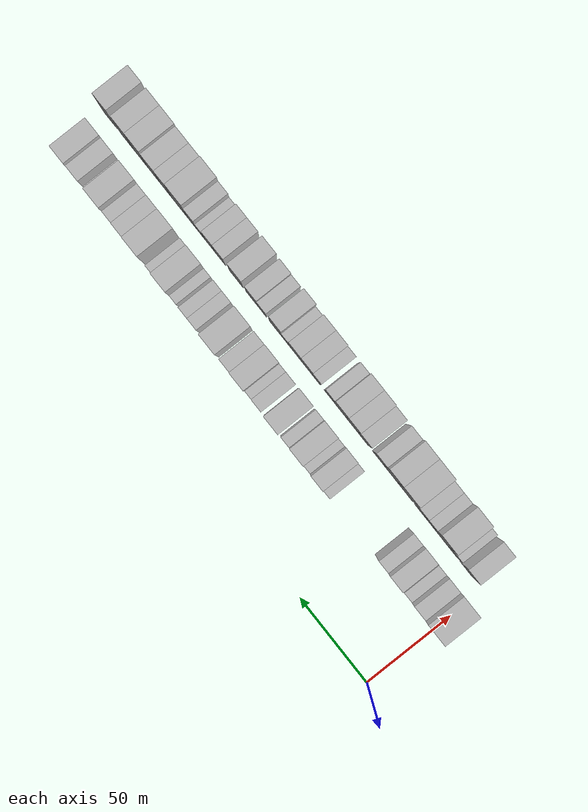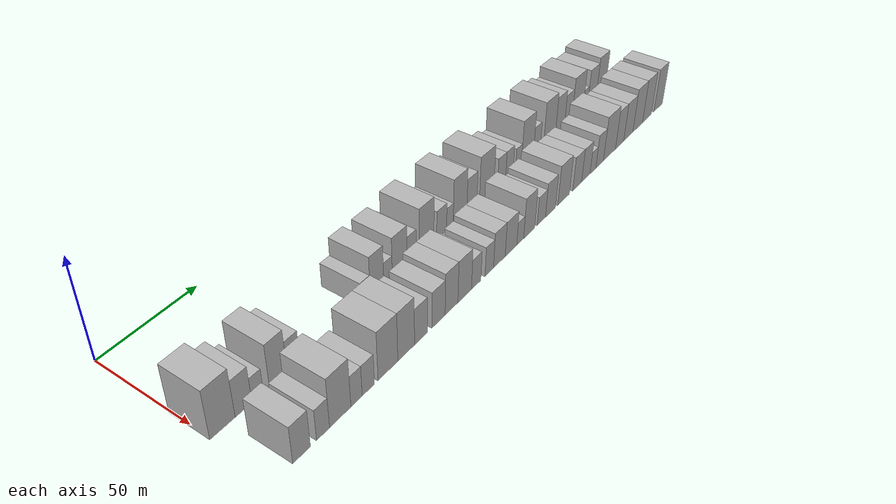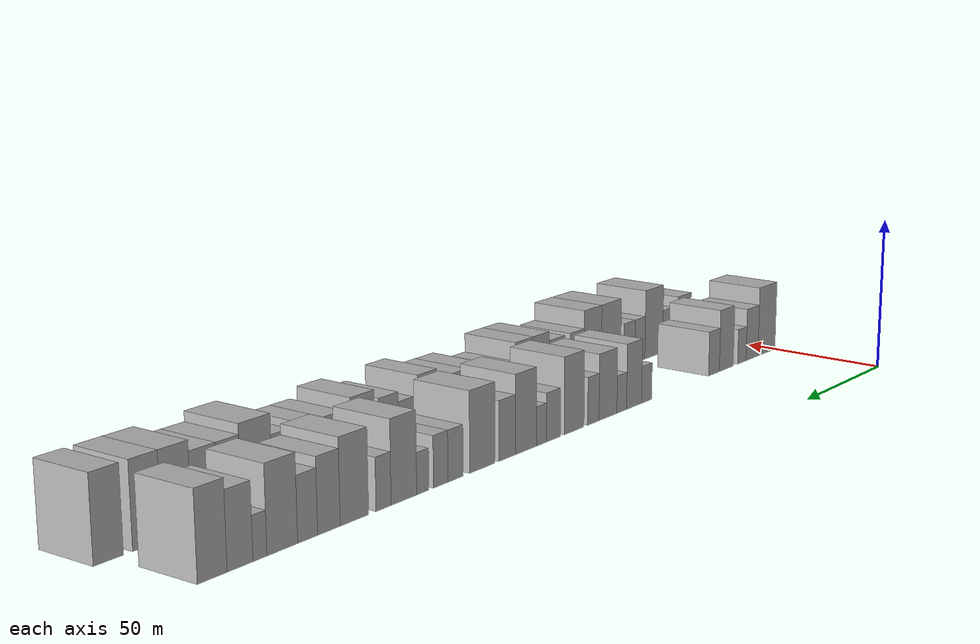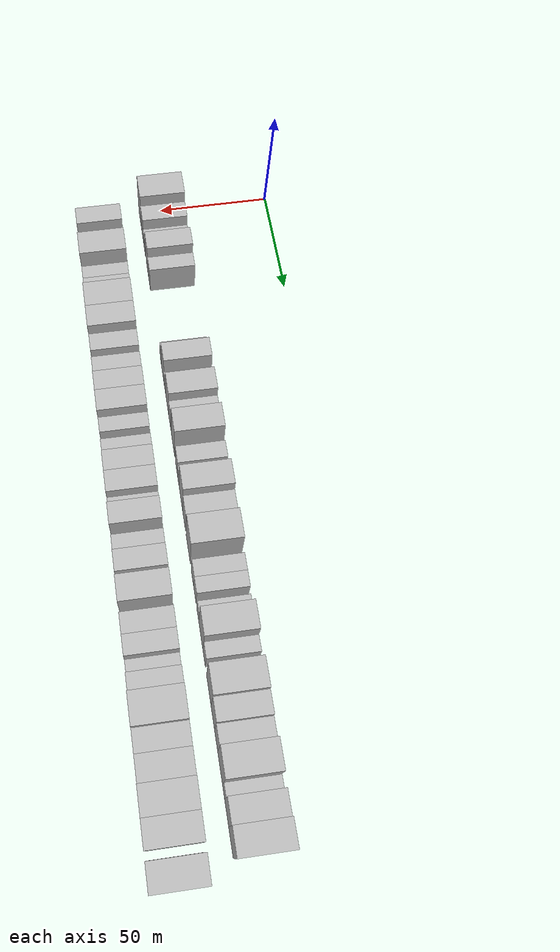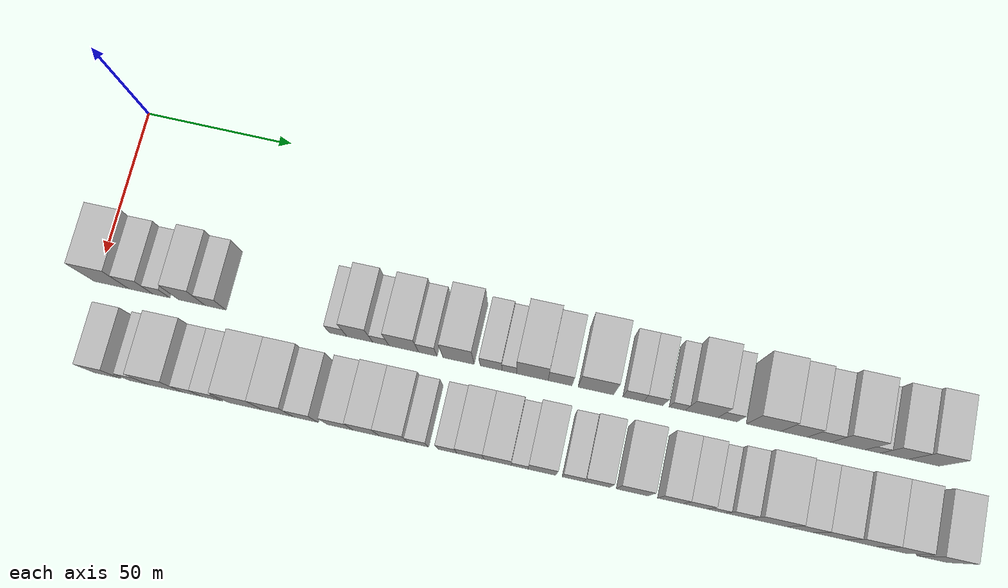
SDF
<sdf version="1.6">
 <world name="default">
  <model name="building_26">
   <static>1</static>
   <pose>50.0000 5.2599 0 0.000000 0.000000 0.000000</pose>
   <link name="link">
    <pose>0 0 12.00 0 0 0</pose>
    <collision name="collision"><geometry><box><size>20.0000 11.9224 24.0000</size></box></geometry></collision>
    <visual name="visual">
     <cast_shadows>0</cast_shadows>
     <geometry><box><size>20.0000 11.9224 24.0000</size></box></geometry>
     <material>
      <script>
       <uri>model://HANNAS_wall/materials/scripts</uri>
       <uri>model://HANNAS_wall/materials/textures</uri>
       <name>vrc/HANNAS_wall</name>
      </script>
     </material>
    </visual>
   </link>
  </model>
  <model name="building_27">
   <static>1</static>
   <pose>50.0000 15.2924 0 0.000000 0.000000 0.000000</pose>
   <link name="link">
    <pose>0 0 9.00 0 0 0</pose>
    <collision name="collision"><geometry><box><size>20.0000 8.1427 18.0000</size></box></geometry></collision>
    <visual name="visual">
     <cast_shadows>0</cast_shadows>
     <geometry><box><size>20.0000 8.1427 18.0000</size></box></geometry>
     <material>
      <script>
       <uri>model://HANNAS_wall/materials/scripts</uri>
       <uri>model://HANNAS_wall/materials/textures</uri>
       <name>vrc/HANNAS_wall</name>
      </script>
     </material>
    </visual>
   </link>
  </model>
  <model name="building_28">
   <static>1</static>
   <pose>50.0000 22.2158 0 0.000000 0.000000 0.000000</pose>
   <link name="link">
    <pose>0 0 6.00 0 0 0</pose>
    <collision name="collision"><geometry><box><size>20.0000 5.7040 12.0000</size></box></geometry></collision>
    <visual name="visual">
     <cast_shadows>0</cast_shadows>
     <geometry><box><size>20.0000 5.7040 12.0000</size></box></geometry>
     <material>
      <script>
       <uri>model://HANNAS_wall/materials/scripts</uri>
       <uri>model://HANNAS_wall/materials/textures</uri>
       <name>vrc/HANNAS_wall</name>
      </script>
     </material>
    </visual>
   </link>
  </model>
  <model name="building_29">
   <static>1</static>
   <pose>50.0000 32.6058 0 0.000000 0.000000 0.000000</pose>
   <link name="link">
    <pose>0 0 10.50 0 0 0</pose>
    <collision name="collision"><geometry><box><size>20.0000 9.0759 21.0000</size></box></geometry></collision>
    <visual name="visual">
     <cast_shadows>0</cast_shadows>
     <geometry><box><size>20.0000 9.0759 21.0000</size></box></geometry>
     <material>
      <script>
       <uri>model://HANNAS_wall/materials/scripts</uri>
       <uri>model://HANNAS_wall/materials/textures</uri>
       <name>vrc/HANNAS_wall</name>
      </script>
     </material>
    </visual>
   </link>
  </model>
  <model name="building_30">
   <static>1</static>
   <pose>50.0000 40.6264 0 0.000000 0.000000 0.000000</pose>
   <link name="link">
    <pose>0 0 7.50 0 0 0</pose>
    <collision name="collision"><geometry><box><size>20.0000 6.9654 15.0000</size></box></geometry></collision>
    <visual name="visual">
     <cast_shadows>0</cast_shadows>
     <geometry><box><size>20.0000 6.9654 15.0000</size></box></geometry>
     <material>
      <script>
       <uri>model://HANNAS_wall/materials/scripts</uri>
       <uri>model://HANNAS_wall/materials/textures</uri>
       <name>vrc/HANNAS_wall</name>
      </script>
     </material>
    </visual>
   </link>
  </model>
  <model name="building_31">
   <static>1</static>
   <pose>50.0000 81.9017 0 0.000000 0.000000 0.000000</pose>
   <link name="link">
    <pose>0 0 6.00 0 0 0</pose>
    <collision name="collision"><geometry><box><size>20.0000 5.8618 12.0000</size></box></geometry></collision>
    <visual name="visual">
     <cast_shadows>0</cast_shadows>
     <geometry><box><size>20.0000 5.8618 12.0000</size></box></geometry>
     <material>
      <script>
       <uri>model://HANNAS_wall/materials/scripts</uri>
       <uri>model://HANNAS_wall/materials/textures</uri>
       <name>vrc/HANNAS_wall</name>
      </script>
     </material>
    </visual>
   </link>
  </model>
  <model name="building_32">
   <static>1</static>
   <pose>50.0000 89.1438 0 0.000000 0.000000 0.000000</pose>
   <link name="link">
    <pose>0 0 10.50 0 0 0</pose>
    <collision name="collision"><geometry><box><size>20.0000 8.6224 21.0000</size></box></geometry></collision>
    <visual name="visual">
     <cast_shadows>0</cast_shadows>
     <geometry><box><size>20.0000 8.6224 21.0000</size></box></geometry>
     <material>
      <script>
       <uri>model://HANNAS_wall/materials/scripts</uri>
       <uri>model://HANNAS_wall/materials/textures</uri>
       <name>vrc/HANNAS_wall</name>
      </script>
     </material>
    </visual>
   </link>
  </model>
  <model name="building_33">
   <static>1</static>
   <pose>50.0000 96.1727 0 0.000000 0.000000 0.000000</pose>
   <link name="link">
    <pose>0 0 6.00 0 0 0</pose>
    <collision name="collision"><geometry><box><size>20.0000 5.4354 12.0000</size></box></geometry></collision>
    <visual name="visual">
     <cast_shadows>0</cast_shadows>
     <geometry><box><size>20.0000 5.4354 12.0000</size></box></geometry>
     <material>
      <script>
       <uri>model://HANNAS_wall/materials/scripts</uri>
       <uri>model://HANNAS_wall/materials/textures</uri>
       <name>vrc/HANNAS_wall</name>
      </script>
     </material>
    </visual>
   </link>
  </model>
  <model name="building_34">
   <static>1</static>
   <pose>50.0000 103.8210 0 0.000000 0.000000 0.000000</pose>
   <link name="link">
    <pose>0 0 10.50 0 0 0</pose>
    <collision name="collision"><geometry><box><size>20.0000 9.8612 21.0000</size></box></geometry></collision>
    <visual name="visual">
     <cast_shadows>0</cast_shadows>
     <geometry><box><size>20.0000 9.8612 21.0000</size></box></geometry>
     <material>
      <script>
       <uri>model://HANNAS_wall/materials/scripts</uri>
       <uri>model://HANNAS_wall/materials/textures</uri>
       <name>vrc/HANNAS_wall</name>
      </script>
     </material>
    </visual>
   </link>
  </model>
  <model name="building_35">
   <static>1</static>
   <pose>50.0000 111.8027 0 0.000000 0.000000 0.000000</pose>
   <link name="link">
    <pose>0 0 7.50 0 0 0</pose>
    <collision name="collision"><geometry><box><size>20.0000 6.1020 15.0000</size></box></geometry></collision>
    <visual name="visual">
     <cast_shadows>0</cast_shadows>
     <geometry><box><size>20.0000 6.1020 15.0000</size></box></geometry>
     <material>
      <script>
       <uri>model://HANNAS_wall/materials/scripts</uri>
       <uri>model://HANNAS_wall/materials/textures</uri>
       <name>vrc/HANNAS_wall</name>
      </script>
     </material>
    </visual>
   </link>
  </model>
  <model name="building_36">
   <static>1</static>
   <pose>50.0000 121.9957 0 0.000000 0.000000 0.000000</pose>
   <link name="link">
    <pose>0 0 12.00 0 0 0</pose>
    <collision name="collision"><geometry><box><size>20.0000 10.2840 24.0000</size></box></geometry></collision>
    <visual name="visual">
     <cast_shadows>0</cast_shadows>
     <geometry><box><size>20.0000 10.2840 24.0000</size></box></geometry>
     <material>
      <script>
       <uri>model://HANNAS_wall/materials/scripts</uri>
       <uri>model://HANNAS_wall/materials/textures</uri>
       <name>vrc/HANNAS_wall</name>
      </script>
     </material>
    </visual>
   </link>
  </model>
  <model name="building_37">
   <static>1</static>
   <pose>50.0000 132.7473 0 0.000000 0.000000 0.000000</pose>
   <link name="link">
    <pose>0 0 7.50 0 0 0</pose>
    <collision name="collision"><geometry><box><size>20.0000 7.2192 15.0000</size></box></geometry></collision>
    <visual name="visual">
     <cast_shadows>0</cast_shadows>
     <geometry><box><size>20.0000 7.2192 15.0000</size></box></geometry>
     <material>
      <script>
       <uri>model://HANNAS_wall/materials/scripts</uri>
       <uri>model://HANNAS_wall/materials/textures</uri>
       <name>vrc/HANNAS_wall</name>
      </script>
     </material>
    </visual>
   </link>
  </model>
  <model name="building_38">
   <static>1</static>
   <pose>50.0000 138.8024 0 0.000000 0.000000 0.000000</pose>
   <link name="link">
    <pose>0 0 6.00 0 0 0</pose>
    <collision name="collision"><geometry><box><size>20.0000 4.8910 12.0000</size></box></geometry></collision>
    <visual name="visual">
     <cast_shadows>0</cast_shadows>
     <geometry><box><size>20.0000 4.8910 12.0000</size></box></geometry>
     <material>
      <script>
       <uri>model://HANNAS_wall/materials/scripts</uri>
       <uri>model://HANNAS_wall/materials/textures</uri>
       <name>vrc/HANNAS_wall</name>
      </script>
     </material>
    </visual>
   </link>
  </model>
  <model name="building_39">
   <static>1</static>
   <pose>50.0000 146.3720 0 0.000000 0.000000 0.000000</pose>
   <link name="link">
    <pose>0 0 12.00 0 0 0</pose>
    <collision name="collision"><geometry><box><size>20.0000 10.2482 24.0000</size></box></geometry></collision>
    <visual name="visual">
     <cast_shadows>0</cast_shadows>
     <geometry><box><size>20.0000 10.2482 24.0000</size></box></geometry>
     <material>
      <script>
       <uri>model://HANNAS_wall/materials/scripts</uri>
       <uri>model://HANNAS_wall/materials/textures</uri>
       <name>vrc/HANNAS_wall</name>
      </script>
     </material>
    </visual>
   </link>
  </model>
  <model name="building_40">
   <static>1</static>
   <pose>50.0000 155.4351 0 0.000000 0.000000 0.000000</pose>
   <link name="link">
    <pose>0 0 9.00 0 0 0</pose>
    <collision name="collision"><geometry><box><size>20.0000 7.8780 18.0000</size></box></geometry></collision>
    <visual name="visual">
     <cast_shadows>0</cast_shadows>
     <geometry><box><size>20.0000 7.8780 18.0000</size></box></geometry>
     <material>
      <script>
       <uri>model://HANNAS_wall/materials/scripts</uri>
       <uri>model://HANNAS_wall/materials/textures</uri>
       <name>vrc/HANNAS_wall</name>
      </script>
     </material>
    </visual>
   </link>
  </model>
  <model name="building_41">
   <static>1</static>
   <pose>50.0000 167.1818 0 0.000000 0.000000 0.000000</pose>
   <link name="link">
    <pose>0 0 12.00 0 0 0</pose>
    <collision name="collision"><geometry><box><size>20.0000 11.6153 24.0000</size></box></geometry></collision>
    <visual name="visual">
     <cast_shadows>0</cast_shadows>
     <geometry><box><size>20.0000 11.6153 24.0000</size></box></geometry>
     <material>
      <script>
       <uri>model://HANNAS_wall/materials/scripts</uri>
       <uri>model://HANNAS_wall/materials/textures</uri>
       <name>vrc/HANNAS_wall</name>
      </script>
     </material>
    </visual>
   </link>
  </model>
  <model name="building_42">
   <static>1</static>
   <pose>50.0000 179.3748 0 0.000000 0.000000 0.000000</pose>
   <link name="link">
    <pose>0 0 7.50 0 0 0</pose>
    <collision name="collision"><geometry><box><size>20.0000 6.7708 15.0000</size></box></geometry></collision>
    <visual name="visual">
     <cast_shadows>0</cast_shadows>
     <geometry><box><size>20.0000 6.7708 15.0000</size></box></geometry>
     <material>
      <script>
       <uri>model://HANNAS_wall/materials/scripts</uri>
       <uri>model://HANNAS_wall/materials/textures</uri>
       <name>vrc/HANNAS_wall</name>
      </script>
     </material>
    </visual>
   </link>
  </model>
  <model name="building_43">
   <static>1</static>
   <pose>50.0000 185.9460 0 0.000000 0.000000 0.000000</pose>
   <link name="link">
    <pose>0 0 7.50 0 0 0</pose>
    <collision name="collision"><geometry><box><size>20.0000 6.3716 15.0000</size></box></geometry></collision>
    <visual name="visual">
     <cast_shadows>0</cast_shadows>
     <geometry><box><size>20.0000 6.3716 15.0000</size></box></geometry>
     <material>
      <script>
       <uri>model://HANNAS_wall/materials/scripts</uri>
       <uri>model://HANNAS_wall/materials/textures</uri>
       <name>vrc/HANNAS_wall</name>
      </script>
     </material>
    </visual>
   </link>
  </model>
  <model name="building_44">
   <static>1</static>
   <pose>50.0000 193.7128 0 0.000000 0.000000 0.000000</pose>
   <link name="link">
    <pose>0 0 6.00 0 0 0</pose>
    <collision name="collision"><geometry><box><size>20.0000 5.1620 12.0000</size></box></geometry></collision>
    <visual name="visual">
     <cast_shadows>0</cast_shadows>
     <geometry><box><size>20.0000 5.1620 12.0000</size></box></geometry>
     <material>
      <script>
       <uri>model://HANNAS_wall/materials/scripts</uri>
       <uri>model://HANNAS_wall/materials/textures</uri>
       <name>vrc/HANNAS_wall</name>
      </script>
     </material>
    </visual>
   </link>
  </model>
  <model name="building_45">
   <static>1</static>
   <pose>50.0000 201.6551 0 0.000000 0.000000 0.000000</pose>
   <link name="link">
    <pose>0 0 12.00 0 0 0</pose>
    <collision name="collision"><geometry><box><size>20.0000 10.7227 24.0000</size></box></geometry></collision>
    <visual name="visual">
     <cast_shadows>0</cast_shadows>
     <geometry><box><size>20.0000 10.7227 24.0000</size></box></geometry>
     <material>
      <script>
       <uri>model://HANNAS_wall/materials/scripts</uri>
       <uri>model://HANNAS_wall/materials/textures</uri>
       <name>vrc/HANNAS_wall</name>
      </script>
     </material>
    </visual>
   </link>
  </model>
  <model name="building_46">
   <static>1</static>
   <pose>50.0000 210.0943 0 0.000000 0.000000 0.000000</pose>
   <link name="link">
    <pose>0 0 7.50 0 0 0</pose>
    <collision name="collision"><geometry><box><size>20.0000 6.1555 15.0000</size></box></geometry></collision>
    <visual name="visual">
     <cast_shadows>0</cast_shadows>
     <geometry><box><size>20.0000 6.1555 15.0000</size></box></geometry>
     <material>
      <script>
       <uri>model://HANNAS_wall/materials/scripts</uri>
       <uri>model://HANNAS_wall/materials/textures</uri>
       <name>vrc/HANNAS_wall</name>
      </script>
     </material>
    </visual>
   </link>
  </model>
  <model name="building_47">
   <static>1</static>
   <pose>50.0000 221.7397 0 0.000000 0.000000 0.000000</pose>
   <link name="link">
    <pose>0 0 12.00 0 0 0</pose>
    <collision name="collision"><geometry><box><size>20.0000 11.1353 24.0000</size></box></geometry></collision>
    <visual name="visual">
     <cast_shadows>0</cast_shadows>
     <geometry><box><size>20.0000 11.1353 24.0000</size></box></geometry>
     <material>
      <script>
       <uri>model://HANNAS_wall/materials/scripts</uri>
       <uri>model://HANNAS_wall/materials/textures</uri>
       <name>vrc/HANNAS_wall</name>
      </script>
     </material>
    </visual>
   </link>
  </model>
  <model name="building_48">
   <static>1</static>
   <pose>50.0000 231.6060 0 0.000000 0.000000 0.000000</pose>
   <link name="link">
    <pose>0 0 10.50 0 0 0</pose>
    <collision name="collision"><geometry><box><size>20.0000 8.5974 21.0000</size></box></geometry></collision>
    <visual name="visual">
     <cast_shadows>0</cast_shadows>
     <geometry><box><size>20.0000 8.5974 21.0000</size></box></geometry>
     <material>
      <script>
       <uri>model://HANNAS_wall/materials/scripts</uri>
       <uri>model://HANNAS_wall/materials/textures</uri>
       <name>vrc/HANNAS_wall</name>
      </script>
     </material>
    </visual>
   </link>
  </model>
  <model name="building_49">
   <static>1</static>
   <pose>50.0000 239.6233 0 0.000000 0.000000 0.000000</pose>
   <link name="link">
    <pose>0 0 9.00 0 0 0</pose>
    <collision name="collision"><geometry><box><size>20.0000 7.4371 18.0000</size></box></geometry></collision>
    <visual name="visual">
     <cast_shadows>0</cast_shadows>
     <geometry><box><size>20.0000 7.4371 18.0000</size></box></geometry>
     <material>
      <script>
       <uri>model://HANNAS_wall/materials/scripts</uri>
       <uri>model://HANNAS_wall/materials/textures</uri>
       <name>vrc/HANNAS_wall</name>
      </script>
     </material>
    </visual>
   </link>
  </model>
  <model name="building_50">
   <static>1</static>
   <pose>50.0000 248.8882 0 0.000000 0.000000 0.000000</pose>
   <link name="link">
    <pose>0 0 12.00 0 0 0</pose>
    <collision name="collision"><geometry><box><size>20.0000 11.0928 24.0000</size></box></geometry></collision>
    <visual name="visual">
     <cast_shadows>0</cast_shadows>
     <geometry><box><size>20.0000 11.0928 24.0000</size></box></geometry>
     <material>
      <script>
       <uri>model://HANNAS_wall/materials/scripts</uri>
       <uri>model://HANNAS_wall/materials/textures</uri>
       <name>vrc/HANNAS_wall</name>
      </script>
     </material>
    </visual>
   </link>
  </model>
  <model name="building_51">
   <static>1</static>
   <pose>50.0000 256.8732 0 0.000000 0.000000 0.000000</pose>
   <link name="link">
    <pose>0 0 6.00 0 0 0</pose>
    <collision name="collision"><geometry><box><size>20.0000 4.8772 12.0000</size></box></geometry></collision>
    <visual name="visual">
     <cast_shadows>0</cast_shadows>
     <geometry><box><size>20.0000 4.8772 12.0000</size></box></geometry>
     <material>
      <script>
       <uri>model://HANNAS_wall/materials/scripts</uri>
       <uri>model://HANNAS_wall/materials/textures</uri>
       <name>vrc/HANNAS_wall</name>
      </script>
     </material>
    </visual>
   </link>
  </model>
  <model name="building_52">
   <static>1</static>
   <pose>50.0000 263.7538 0 0.000000 0.000000 0.000000</pose>
   <link name="link">
    <pose>0 0 10.50 0 0 0</pose>
    <collision name="collision"><geometry><box><size>20.0000 8.8839 21.0000</size></box></geometry></collision>
    <visual name="visual">
     <cast_shadows>0</cast_shadows>
     <geometry><box><size>20.0000 8.8839 21.0000</size></box></geometry>
     <material>
      <script>
       <uri>model://HANNAS_wall/materials/scripts</uri>
       <uri>model://HANNAS_wall/materials/textures</uri>
       <name>vrc/HANNAS_wall</name>
      </script>
     </material>
    </visual>
   </link>
  </model>
  <model name="building_53">
   <static>1</static>
   <pose>50.0000 273.1665 0 0.000000 0.000000 0.000000</pose>
   <link name="link">
    <pose>0 0 12.00 0 0 0</pose>
    <collision name="collision"><geometry><box><size>20.0000 9.9415 24.0000</size></box></geometry></collision>
    <visual name="visual">
     <cast_shadows>0</cast_shadows>
     <geometry><box><size>20.0000 9.9415 24.0000</size></box></geometry>
     <material>
      <script>
       <uri>model://HANNAS_wall/materials/scripts</uri>
       <uri>model://HANNAS_wall/materials/textures</uri>
       <name>vrc/HANNAS_wall</name>
      </script>
     </material>
    </visual>
   </link>
  </model>
  <model name="building_86">
   <static>1</static>
   <pose>79.0000 12.7780 0 0.000000 0.000000 0.000000</pose>
   <link name="link">
    <pose>0 0 9.00 0 0 0</pose>
    <collision name="collision"><geometry><box><size>20.0000 8.6997 18.0000</size></box></geometry></collision>
    <visual name="visual">
     <cast_shadows>0</cast_shadows>
     <geometry><box><size>20.0000 8.6997 18.0000</size></box></geometry>
     <material>
      <script>
       <uri>model://HANNAS_wall/materials/scripts</uri>
       <uri>model://HANNAS_wall/materials/textures</uri>
       <name>vrc/HANNAS_wall</name>
      </script>
     </material>
    </visual>
   </link>
  </model>
  <model name="building_87">
   <static>1</static>
   <pose>79.0000 23.4597 0 0.000000 0.000000 0.000000</pose>
   <link name="link">
    <pose>0 0 7.50 0 0 0</pose>
    <collision name="collision"><geometry><box><size>20.0000 6.6637 15.0000</size></box></geometry></collision>
    <visual name="visual">
     <cast_shadows>0</cast_shadows>
     <geometry><box><size>20.0000 6.6637 15.0000</size></box></geometry>
     <material>
      <script>
       <uri>model://HANNAS_wall/materials/scripts</uri>
       <uri>model://HANNAS_wall/materials/textures</uri>
       <name>vrc/HANNAS_wall</name>
      </script>
     </material>
    </visual>
   </link>
  </model>
  <model name="building_88">
   <static>1</static>
   <pose>79.0000 32.4329 0 0.000000 0.000000 0.000000</pose>
   <link name="link">
    <pose>0 0 12.00 0 0 0</pose>
    <collision name="collision"><geometry><box><size>20.0000 11.2827 24.0000</size></box></geometry></collision>
    <visual name="visual">
     <cast_shadows>0</cast_shadows>
     <geometry><box><size>20.0000 11.2827 24.0000</size></box></geometry>
     <material>
      <script>
       <uri>model://HANNAS_wall/materials/scripts</uri>
       <uri>model://HANNAS_wall/materials/textures</uri>
       <name>vrc/HANNAS_wall</name>
      </script>
     </material>
    </visual>
   </link>
  </model>
  <model name="building_89">
   <static>1</static>
   <pose>79.0000 41.1696 0 0.000000 0.000000 0.000000</pose>
   <link name="link">
    <pose>0 0 7.50 0 0 0</pose>
    <collision name="collision"><geometry><box><size>20.0000 6.1907 15.0000</size></box></geometry></collision>
    <visual name="visual">
     <cast_shadows>0</cast_shadows>
     <geometry><box><size>20.0000 6.1907 15.0000</size></box></geometry>
     <material>
      <script>
       <uri>model://HANNAS_wall/materials/scripts</uri>
       <uri>model://HANNAS_wall/materials/textures</uri>
       <name>vrc/HANNAS_wall</name>
      </script>
     </material>
    </visual>
   </link>
  </model>
  <model name="building_90">
   <static>1</static>
   <pose>79.0000 47.6889 0 0.000000 0.000000 0.000000</pose>
   <link name="link">
    <pose>0 0 7.50 0 0 0</pose>
    <collision name="collision"><geometry><box><size>20.0000 6.8479 15.0000</size></box></geometry></collision>
    <visual name="visual">
     <cast_shadows>0</cast_shadows>
     <geometry><box><size>20.0000 6.8479 15.0000</size></box></geometry>
     <material>
      <script>
       <uri>model://HANNAS_wall/materials/scripts</uri>
       <uri>model://HANNAS_wall/materials/textures</uri>
       <name>vrc/HANNAS_wall</name>
      </script>
     </material>
    </visual>
   </link>
  </model>
  <model name="building_91">
   <static>1</static>
   <pose>79.0000 58.8904 0 0.000000 0.000000 0.000000</pose>
   <link name="link">
    <pose>0 0 12.00 0 0 0</pose>
    <collision name="collision"><geometry><box><size>20.0000 11.5549 24.0000</size></box></geometry></collision>
    <visual name="visual">
     <cast_shadows>0</cast_shadows>
     <geometry><box><size>20.0000 11.5549 24.0000</size></box></geometry>
     <material>
      <script>
       <uri>model://HANNAS_wall/materials/scripts</uri>
       <uri>model://HANNAS_wall/materials/textures</uri>
       <name>vrc/HANNAS_wall</name>
      </script>
     </material>
    </visual>
   </link>
  </model>
  <model name="building_92">
   <static>1</static>
   <pose>79.0000 69.7331 0 0.000000 0.000000 0.000000</pose>
   <link name="link">
    <pose>0 0 12.00 0 0 0</pose>
    <collision name="collision"><geometry><box><size>20.0000 10.1305 24.0000</size></box></geometry></collision>
    <visual name="visual">
     <cast_shadows>0</cast_shadows>
     <geometry><box><size>20.0000 10.1305 24.0000</size></box></geometry>
     <material>
      <script>
       <uri>model://HANNAS_wall/materials/scripts</uri>
       <uri>model://HANNAS_wall/materials/textures</uri>
       <name>vrc/HANNAS_wall</name>
      </script>
     </material>
    </visual>
   </link>
  </model>
  <model name="building_93">
   <static>1</static>
   <pose>79.0000 78.8061 0 0.000000 0.000000 0.000000</pose>
   <link name="link">
    <pose>0 0 9.00 0 0 0</pose>
    <collision name="collision"><geometry><box><size>20.0000 8.0155 18.0000</size></box></geometry></collision>
    <visual name="visual">
     <cast_shadows>0</cast_shadows>
     <geometry><box><size>20.0000 8.0155 18.0000</size></box></geometry>
     <material>
      <script>
       <uri>model://HANNAS_wall/materials/scripts</uri>
       <uri>model://HANNAS_wall/materials/textures</uri>
       <name>vrc/HANNAS_wall</name>
      </script>
     </material>
    </visual>
   </link>
  </model>
  <model name="building_94">
   <static>1</static>
   <pose>79.0000 90.0662 0 0.000000 0.000000 0.000000</pose>
   <link name="link">
    <pose>0 0 9.00 0 0 0</pose>
    <collision name="collision"><geometry><box><size>20.0000 8.5048 18.0000</size></box></geometry></collision>
    <visual name="visual">
     <cast_shadows>0</cast_shadows>
     <geometry><box><size>20.0000 8.5048 18.0000</size></box></geometry>
     <material>
      <script>
       <uri>model://HANNAS_wall/materials/scripts</uri>
       <uri>model://HANNAS_wall/materials/textures</uri>
       <name>vrc/HANNAS_wall</name>
      </script>
     </material>
    </visual>
   </link>
  </model>
  <model name="building_95">
   <static>1</static>
   <pose>79.0000 98.6277 0 0.000000 0.000000 0.000000</pose>
   <link name="link">
    <pose>0 0 10.50 0 0 0</pose>
    <collision name="collision"><geometry><box><size>20.0000 8.6181 21.0000</size></box></geometry></collision>
    <visual name="visual">
     <cast_shadows>0</cast_shadows>
     <geometry><box><size>20.0000 8.6181 21.0000</size></box></geometry>
     <material>
      <script>
       <uri>model://HANNAS_wall/materials/scripts</uri>
       <uri>model://HANNAS_wall/materials/textures</uri>
       <name>vrc/HANNAS_wall</name>
      </script>
     </material>
    </visual>
   </link>
  </model>
  <model name="building_96">
   <static>1</static>
   <pose>79.0000 107.6361 0 0.000000 0.000000 0.000000</pose>
   <link name="link">
    <pose>0 0 10.50 0 0 0</pose>
    <collision name="collision"><geometry><box><size>20.0000 9.3988 21.0000</size></box></geometry></collision>
    <visual name="visual">
     <cast_shadows>0</cast_shadows>
     <geometry><box><size>20.0000 9.3988 21.0000</size></box></geometry>
     <material>
      <script>
       <uri>model://HANNAS_wall/materials/scripts</uri>
       <uri>model://HANNAS_wall/materials/textures</uri>
       <name>vrc/HANNAS_wall</name>
      </script>
     </material>
    </visual>
   </link>
  </model>
  <model name="building_97">
   <static>1</static>
   <pose>79.0000 115.6585 0 0.000000 0.000000 0.000000</pose>
   <link name="link">
    <pose>0 0 7.50 0 0 0</pose>
    <collision name="collision"><geometry><box><size>20.0000 6.6461 15.0000</size></box></geometry></collision>
    <visual name="visual">
     <cast_shadows>0</cast_shadows>
     <geometry><box><size>20.0000 6.6461 15.0000</size></box></geometry>
     <material>
      <script>
       <uri>model://HANNAS_wall/materials/scripts</uri>
       <uri>model://HANNAS_wall/materials/textures</uri>
       <name>vrc/HANNAS_wall</name>
      </script>
     </material>
    </visual>
   </link>
  </model>
  <model name="building_98">
   <static>1</static>
   <pose>79.0000 125.1014 0 0.000000 0.000000 0.000000</pose>
   <link name="link">
    <pose>0 0 7.50 0 0 0</pose>
    <collision name="collision"><geometry><box><size>20.0000 6.2397 15.0000</size></box></geometry></collision>
    <visual name="visual">
     <cast_shadows>0</cast_shadows>
     <geometry><box><size>20.0000 6.2397 15.0000</size></box></geometry>
     <material>
      <script>
       <uri>model://HANNAS_wall/materials/scripts</uri>
       <uri>model://HANNAS_wall/materials/textures</uri>
       <name>vrc/HANNAS_wall</name>
      </script>
     </material>
    </visual>
   </link>
  </model>
  <model name="building_99">
   <static>1</static>
   <pose>79.0000 132.5782 0 0.000000 0.000000 0.000000</pose>
   <link name="link">
    <pose>0 0 9.00 0 0 0</pose>
    <collision name="collision"><geometry><box><size>20.0000 8.7138 18.0000</size></box></geometry></collision>
    <visual name="visual">
     <cast_shadows>0</cast_shadows>
     <geometry><box><size>20.0000 8.7138 18.0000</size></box></geometry>
     <material>
      <script>
       <uri>model://HANNAS_wall/materials/scripts</uri>
       <uri>model://HANNAS_wall/materials/textures</uri>
       <name>vrc/HANNAS_wall</name>
      </script>
     </material>
    </visual>
   </link>
  </model>
  <model name="building_100">
   <static>1</static>
   <pose>79.0000 141.4201 0 0.000000 0.000000 0.000000</pose>
   <link name="link">
    <pose>0 0 9.00 0 0 0</pose>
    <collision name="collision"><geometry><box><size>20.0000 8.9702 18.0000</size></box></geometry></collision>
    <visual name="visual">
     <cast_shadows>0</cast_shadows>
     <geometry><box><size>20.0000 8.9702 18.0000</size></box></geometry>
     <material>
      <script>
       <uri>model://HANNAS_wall/materials/scripts</uri>
       <uri>model://HANNAS_wall/materials/textures</uri>
       <name>vrc/HANNAS_wall</name>
      </script>
     </material>
    </visual>
   </link>
  </model>
  <model name="building_101">
   <static>1</static>
   <pose>79.0000 148.5894 0 0.000000 0.000000 0.000000</pose>
   <link name="link">
    <pose>0 0 6.00 0 0 0</pose>
    <collision name="collision"><geometry><box><size>20.0000 5.3684 12.0000</size></box></geometry></collision>
    <visual name="visual">
     <cast_shadows>0</cast_shadows>
     <geometry><box><size>20.0000 5.3684 12.0000</size></box></geometry>
     <material>
      <script>
       <uri>model://HANNAS_wall/materials/scripts</uri>
       <uri>model://HANNAS_wall/materials/textures</uri>
       <name>vrc/HANNAS_wall</name>
      </script>
     </material>
    </visual>
   </link>
  </model>
  <model name="building_102">
   <static>1</static>
   <pose>79.0000 155.7631 0 0.000000 0.000000 0.000000</pose>
   <link name="link">
    <pose>0 0 10.50 0 0 0</pose>
    <collision name="collision"><geometry><box><size>20.0000 8.9789 21.0000</size></box></geometry></collision>
    <visual name="visual">
     <cast_shadows>0</cast_shadows>
     <geometry><box><size>20.0000 8.9789 21.0000</size></box></geometry>
     <material>
      <script>
       <uri>model://HANNAS_wall/materials/scripts</uri>
       <uri>model://HANNAS_wall/materials/textures</uri>
       <name>vrc/HANNAS_wall</name>
      </script>
     </material>
    </visual>
   </link>
  </model>
  <model name="building_103">
   <static>1</static>
   <pose>79.0000 165.6798 0 0.000000 0.000000 0.000000</pose>
   <link name="link">
    <pose>0 0 7.50 0 0 0</pose>
    <collision name="collision"><geometry><box><size>20.0000 6.8545 15.0000</size></box></geometry></collision>
    <visual name="visual">
     <cast_shadows>0</cast_shadows>
     <geometry><box><size>20.0000 6.8545 15.0000</size></box></geometry>
     <material>
      <script>
       <uri>model://HANNAS_wall/materials/scripts</uri>
       <uri>model://HANNAS_wall/materials/textures</uri>
       <name>vrc/HANNAS_wall</name>
      </script>
     </material>
    </visual>
   </link>
  </model>
  <model name="building_104">
   <static>1</static>
   <pose>79.0000 173.3804 0 0.000000 0.000000 0.000000</pose>
   <link name="link">
    <pose>0 0 9.00 0 0 0</pose>
    <collision name="collision"><geometry><box><size>20.0000 8.5466 18.0000</size></box></geometry></collision>
    <visual name="visual">
     <cast_shadows>0</cast_shadows>
     <geometry><box><size>20.0000 8.5466 18.0000</size></box></geometry>
     <material>
      <script>
       <uri>model://HANNAS_wall/materials/scripts</uri>
       <uri>model://HANNAS_wall/materials/textures</uri>
       <name>vrc/HANNAS_wall</name>
      </script>
     </material>
    </visual>
   </link>
  </model>
  <model name="building_105">
   <static>1</static>
   <pose>79.0000 184.7808 0 0.000000 0.000000 0.000000</pose>
   <link name="link">
    <pose>0 0 10.50 0 0 0</pose>
    <collision name="collision"><geometry><box><size>20.0000 10.2542 21.0000</size></box></geometry></collision>
    <visual name="visual">
     <cast_shadows>0</cast_shadows>
     <geometry><box><size>20.0000 10.2542 21.0000</size></box></geometry>
     <material>
      <script>
       <uri>model://HANNAS_wall/materials/scripts</uri>
       <uri>model://HANNAS_wall/materials/textures</uri>
       <name>vrc/HANNAS_wall</name>
      </script>
     </material>
    </visual>
   </link>
  </model>
  <model name="building_106">
   <static>1</static>
   <pose>79.0000 196.9544 0 0.000000 0.000000 0.000000</pose>
   <link name="link">
    <pose>0 0 9.00 0 0 0</pose>
    <collision name="collision"><geometry><box><size>20.0000 8.0929 18.0000</size></box></geometry></collision>
    <visual name="visual">
     <cast_shadows>0</cast_shadows>
     <geometry><box><size>20.0000 8.0929 18.0000</size></box></geometry>
     <material>
      <script>
       <uri>model://HANNAS_wall/materials/scripts</uri>
       <uri>model://HANNAS_wall/materials/textures</uri>
       <name>vrc/HANNAS_wall</name>
      </script>
     </material>
    </visual>
   </link>
  </model>
  <model name="building_107">
   <static>1</static>
   <pose>79.0000 204.9136 0 0.000000 0.000000 0.000000</pose>
   <link name="link">
    <pose>0 0 9.00 0 0 0</pose>
    <collision name="collision"><geometry><box><size>20.0000 7.8255 18.0000</size></box></geometry></collision>
    <visual name="visual">
     <cast_shadows>0</cast_shadows>
     <geometry><box><size>20.0000 7.8255 18.0000</size></box></geometry>
     <material>
      <script>
       <uri>model://HANNAS_wall/materials/scripts</uri>
       <uri>model://HANNAS_wall/materials/textures</uri>
       <name>vrc/HANNAS_wall</name>
      </script>
     </material>
    </visual>
   </link>
  </model>
  <model name="building_108">
   <static>1</static>
   <pose>79.0000 211.6368 0 0.000000 0.000000 0.000000</pose>
   <link name="link">
    <pose>0 0 6.00 0 0 0</pose>
    <collision name="collision"><geometry><box><size>20.0000 5.6210 12.0000</size></box></geometry></collision>
    <visual name="visual">
     <cast_shadows>0</cast_shadows>
     <geometry><box><size>20.0000 5.6210 12.0000</size></box></geometry>
     <material>
      <script>
       <uri>model://HANNAS_wall/materials/scripts</uri>
       <uri>model://HANNAS_wall/materials/textures</uri>
       <name>vrc/HANNAS_wall</name>
      </script>
     </material>
    </visual>
   </link>
  </model>
  <model name="building_109">
   <static>1</static>
   <pose>79.0000 218.0971 0 0.000000 0.000000 0.000000</pose>
   <link name="link">
    <pose>0 0 9.00 0 0 0</pose>
    <collision name="collision"><geometry><box><size>20.0000 7.2996 18.0000</size></box></geometry></collision>
    <visual name="visual">
     <cast_shadows>0</cast_shadows>
     <geometry><box><size>20.0000 7.2996 18.0000</size></box></geometry>
     <material>
      <script>
       <uri>model://HANNAS_wall/materials/scripts</uri>
       <uri>model://HANNAS_wall/materials/textures</uri>
       <name>vrc/HANNAS_wall</name>
      </script>
     </material>
    </visual>
   </link>
  </model>
  <model name="building_110">
   <static>1</static>
   <pose>79.0000 227.7452 0 0.000000 0.000000 0.000000</pose>
   <link name="link">
    <pose>0 0 12.00 0 0 0</pose>
    <collision name="collision"><geometry><box><size>20.0000 11.9965 24.0000</size></box></geometry></collision>
    <visual name="visual">
     <cast_shadows>0</cast_shadows>
     <geometry><box><size>20.0000 11.9965 24.0000</size></box></geometry>
     <material>
      <script>
       <uri>model://HANNAS_wall/materials/scripts</uri>
       <uri>model://HANNAS_wall/materials/textures</uri>
       <name>vrc/HANNAS_wall</name>
      </script>
     </material>
    </visual>
   </link>
  </model>
  <model name="building_111">
   <static>1</static>
   <pose>79.0000 237.9627 0 0.000000 0.000000 0.000000</pose>
   <link name="link">
    <pose>0 0 10.50 0 0 0</pose>
    <collision name="collision"><geometry><box><size>20.0000 8.4385 21.0000</size></box></geometry></collision>
    <visual name="visual">
     <cast_shadows>0</cast_shadows>
     <geometry><box><size>20.0000 8.4385 21.0000</size></box></geometry>
     <material>
      <script>
       <uri>model://HANNAS_wall/materials/scripts</uri>
       <uri>model://HANNAS_wall/materials/textures</uri>
       <name>vrc/HANNAS_wall</name>
      </script>
     </material>
    </visual>
   </link>
  </model>
  <model name="building_112">
   <static>1</static>
   <pose>79.0000 246.9500 0 0.000000 0.000000 0.000000</pose>
   <link name="link">
    <pose>0 0 10.50 0 0 0</pose>
    <collision name="collision"><geometry><box><size>20.0000 9.5361 21.0000</size></box></geometry></collision>
    <visual name="visual">
     <cast_shadows>0</cast_shadows>
     <geometry><box><size>20.0000 9.5361 21.0000</size></box></geometry>
     <material>
      <script>
       <uri>model://HANNAS_wall/materials/scripts</uri>
       <uri>model://HANNAS_wall/materials/textures</uri>
       <name>vrc/HANNAS_wall</name>
      </script>
     </material>
    </visual>
   </link>
  </model>
  <model name="building_113">
   <static>1</static>
   <pose>79.0000 256.9495 0 0.000000 0.000000 0.000000</pose>
   <link name="link">
    <pose>0 0 12.00 0 0 0</pose>
    <collision name="collision"><geometry><box><size>20.0000 10.4629 24.0000</size></box></geometry></collision>
    <visual name="visual">
     <cast_shadows>0</cast_shadows>
     <geometry><box><size>20.0000 10.4629 24.0000</size></box></geometry>
     <material>
      <script>
       <uri>model://HANNAS_wall/materials/scripts</uri>
       <uri>model://HANNAS_wall/materials/textures</uri>
       <name>vrc/HANNAS_wall</name>
      </script>
     </material>
    </visual>
   </link>
  </model>
  <model name="building_114">
   <static>1</static>
   <pose>79.0000 267.0394 0 0.000000 0.000000 0.000000</pose>
   <link name="link">
    <pose>0 0 12.00 0 0 0</pose>
    <collision name="collision"><geometry><box><size>20.0000 9.7169 24.0000</size></box></geometry></collision>
    <visual name="visual">
     <cast_shadows>0</cast_shadows>
     <geometry><box><size>20.0000 9.7169 24.0000</size></box></geometry>
     <material>
      <script>
       <uri>model://HANNAS_wall/materials/scripts</uri>
       <uri>model://HANNAS_wall/materials/textures</uri>
       <name>vrc/HANNAS_wall</name>
      </script>
     </material>
    </visual>
   </link>
  </model>
  <model name="building_115">
   <static>1</static>
   <pose>79.0000 279.7881 0 0.000000 0.000000 0.000000</pose>
   <link name="link">
    <pose>0 0 12.00 0 0 0</pose>
    <collision name="collision"><geometry><box><size>20.0000 9.7805 24.0000</size></box></geometry></collision>
    <visual name="visual">
     <cast_shadows>0</cast_shadows>
     <geometry><box><size>20.0000 9.7805 24.0000</size></box></geometry>
     <material>
      <script>
       <uri>model://HANNAS_wall/materials/scripts</uri>
       <uri>model://HANNAS_wall/materials/textures</uri>
       <name>vrc/HANNAS_wall</name>
      </script>
     </material>
    </visual>
   </link>
  </model>
 </world>
</sdf>
